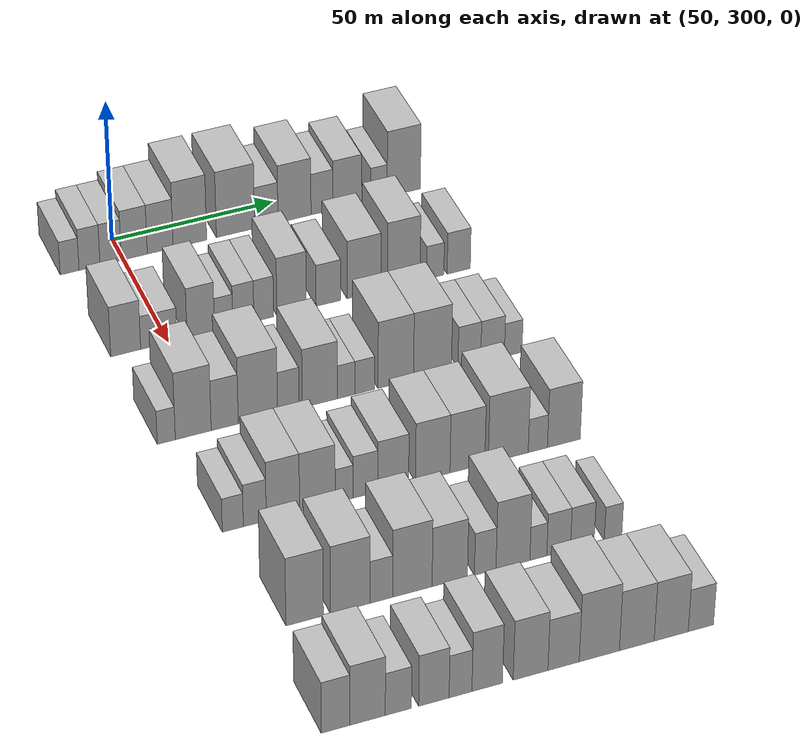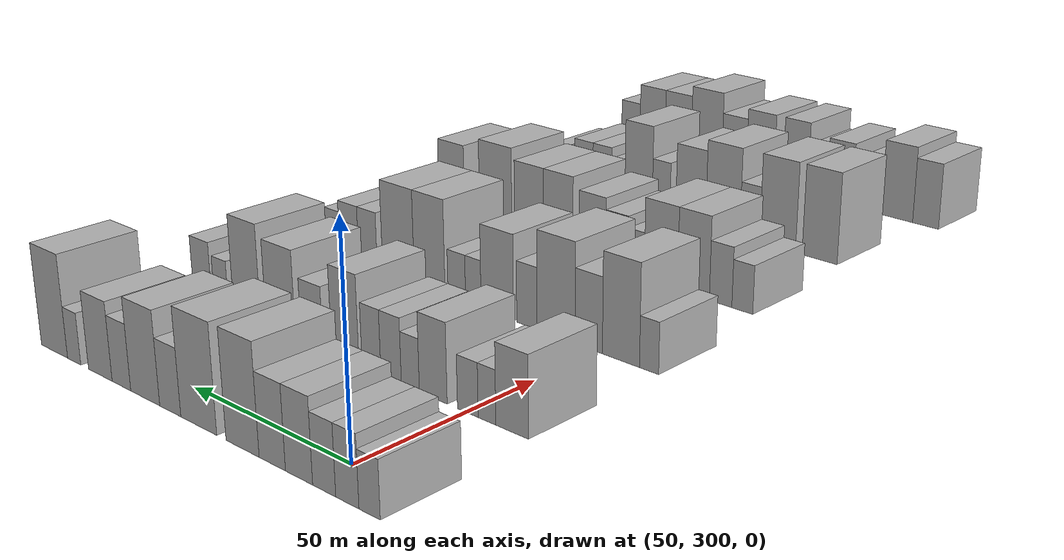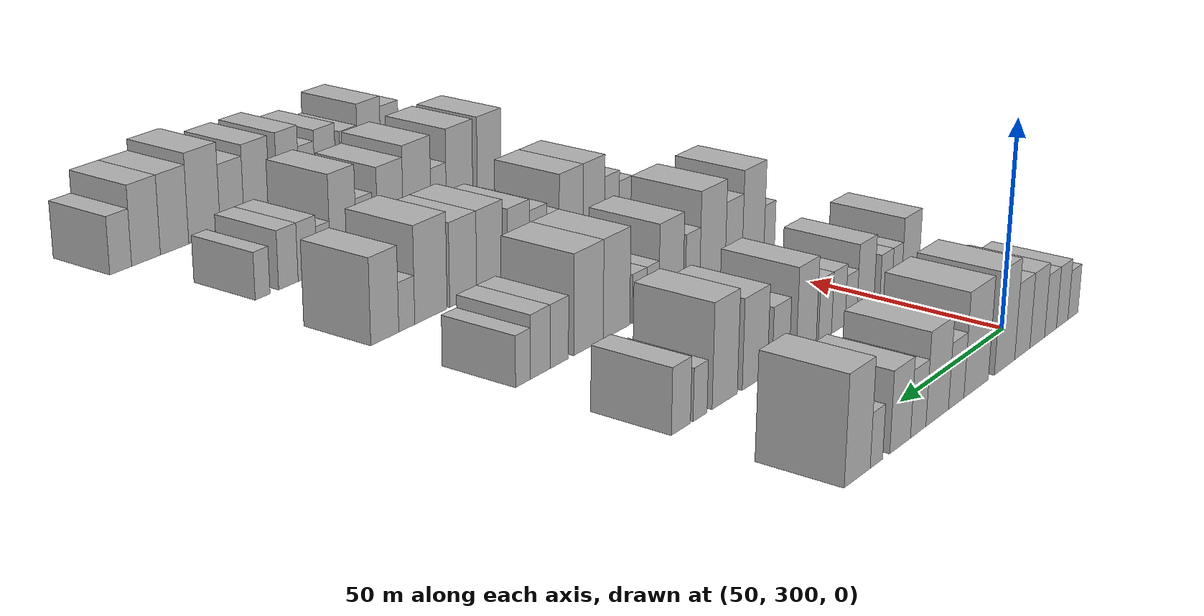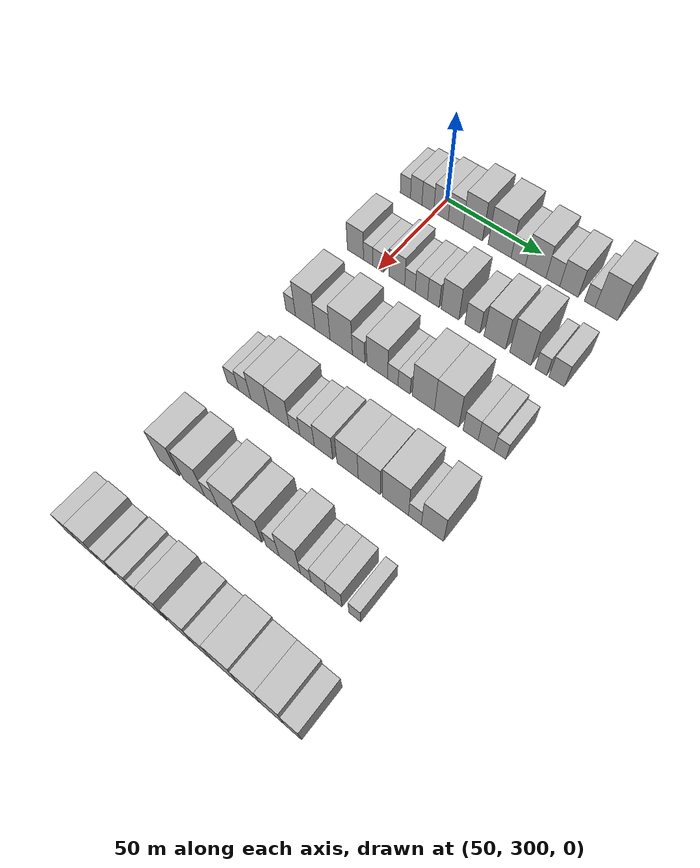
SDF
<sdf version="1.6">
 <world name="default">
  <model name="building_99">
   <static>1</static>
   <pose>50.0000 283.5942 0 0.000000 0.000000 0.000000</pose>
   <link name="link">
    <pose>0 0 6.00 0 0 0</pose>
    <collision name="collision"><geometry><box><size>20.0000 5.7207 12.0000</size></box></geometry></collision>
    <visual name="visual">
     <cast_shadows>0</cast_shadows>
     <geometry><box><size>20.0000 5.7207 12.0000</size></box></geometry>
     <material>
      <script>
       <uri>model://HANNAS_wall/materials/scripts</uri>
       <uri>model://HANNAS_wall/materials/textures</uri>
       <name>vrc/HANNAS_wall</name>
      </script>
     </material>
    </visual>
   </link>
  </model>
  <model name="building_100">
   <static>1</static>
   <pose>50.0000 289.6488 0 0.000000 0.000000 0.000000</pose>
   <link name="link">
    <pose>0 0 7.50 0 0 0</pose>
    <collision name="collision"><geometry><box><size>20.0000 6.3885 15.0000</size></box></geometry></collision>
    <visual name="visual">
     <cast_shadows>0</cast_shadows>
     <geometry><box><size>20.0000 6.3885 15.0000</size></box></geometry>
     <material>
      <script>
       <uri>model://HANNAS_wall/materials/scripts</uri>
       <uri>model://HANNAS_wall/materials/textures</uri>
       <name>vrc/HANNAS_wall</name>
      </script>
     </material>
    </visual>
   </link>
  </model>
  <model name="building_101">
   <static>1</static>
   <pose>50.0000 296.1106 0 0.000000 0.000000 0.000000</pose>
   <link name="link">
    <pose>0 0 7.50 0 0 0</pose>
    <collision name="collision"><geometry><box><size>20.0000 6.5351 15.0000</size></box></geometry></collision>
    <visual name="visual">
     <cast_shadows>0</cast_shadows>
     <geometry><box><size>20.0000 6.5351 15.0000</size></box></geometry>
     <material>
      <script>
       <uri>model://HANNAS_wall/materials/scripts</uri>
       <uri>model://HANNAS_wall/materials/textures</uri>
       <name>vrc/HANNAS_wall</name>
      </script>
     </material>
    </visual>
   </link>
  </model>
  <model name="building_102">
   <static>1</static>
   <pose>50.0000 303.3493 0 0.000000 0.000000 0.000000</pose>
   <link name="link">
    <pose>0 0 9.00 0 0 0</pose>
    <collision name="collision"><geometry><box><size>20.0000 7.9422 18.0000</size></box></geometry></collision>
    <visual name="visual">
     <cast_shadows>0</cast_shadows>
     <geometry><box><size>20.0000 7.9422 18.0000</size></box></geometry>
     <material>
      <script>
       <uri>model://HANNAS_wall/materials/scripts</uri>
       <uri>model://HANNAS_wall/materials/textures</uri>
       <name>vrc/HANNAS_wall</name>
      </script>
     </material>
    </visual>
   </link>
  </model>
  <model name="building_103">
   <static>1</static>
   <pose>50.0000 311.2941 0 0.000000 0.000000 0.000000</pose>
   <link name="link">
    <pose>0 0 9.00 0 0 0</pose>
    <collision name="collision"><geometry><box><size>20.0000 7.9475 18.0000</size></box></geometry></collision>
    <visual name="visual">
     <cast_shadows>0</cast_shadows>
     <geometry><box><size>20.0000 7.9475 18.0000</size></box></geometry>
     <material>
      <script>
       <uri>model://HANNAS_wall/materials/scripts</uri>
       <uri>model://HANNAS_wall/materials/textures</uri>
       <name>vrc/HANNAS_wall</name>
      </script>
     </material>
    </visual>
   </link>
  </model>
  <model name="building_104">
   <static>1</static>
   <pose>50.0000 320.4588 0 0.000000 0.000000 0.000000</pose>
   <link name="link">
    <pose>0 0 12.00 0 0 0</pose>
    <collision name="collision"><geometry><box><size>20.0000 10.3818 24.0000</size></box></geometry></collision>
    <visual name="visual">
     <cast_shadows>0</cast_shadows>
     <geometry><box><size>20.0000 10.3818 24.0000</size></box></geometry>
     <material>
      <script>
       <uri>model://HANNAS_wall/materials/scripts</uri>
       <uri>model://HANNAS_wall/materials/textures</uri>
       <name>vrc/HANNAS_wall</name>
      </script>
     </material>
    </visual>
   </link>
  </model>
  <model name="building_105">
   <static>1</static>
   <pose>50.0000 334.6109 0 0.000000 0.000000 0.000000</pose>
   <link name="link">
    <pose>0 0 12.00 0 0 0</pose>
    <collision name="collision"><geometry><box><size>20.0000 11.9225 24.0000</size></box></geometry></collision>
    <visual name="visual">
     <cast_shadows>0</cast_shadows>
     <geometry><box><size>20.0000 11.9225 24.0000</size></box></geometry>
     <material>
      <script>
       <uri>model://HANNAS_wall/materials/scripts</uri>
       <uri>model://HANNAS_wall/materials/textures</uri>
       <name>vrc/HANNAS_wall</name>
      </script>
     </material>
    </visual>
   </link>
  </model>
  <model name="building_106">
   <static>1</static>
   <pose>50.0000 344.2113 0 0.000000 0.000000 0.000000</pose>
   <link name="link">
    <pose>0 0 7.50 0 0 0</pose>
    <collision name="collision"><geometry><box><size>20.0000 7.2783 15.0000</size></box></geometry></collision>
    <visual name="visual">
     <cast_shadows>0</cast_shadows>
     <geometry><box><size>20.0000 7.2783 15.0000</size></box></geometry>
     <material>
      <script>
       <uri>model://HANNAS_wall/materials/scripts</uri>
       <uri>model://HANNAS_wall/materials/textures</uri>
       <name>vrc/HANNAS_wall</name>
      </script>
     </material>
    </visual>
   </link>
  </model>
  <model name="building_107">
   <static>1</static>
   <pose>50.0000 353.0232 0 0.000000 0.000000 0.000000</pose>
   <link name="link">
    <pose>0 0 10.50 0 0 0</pose>
    <collision name="collision"><geometry><box><size>20.0000 10.3456 21.0000</size></box></geometry></collision>
    <visual name="visual">
     <cast_shadows>0</cast_shadows>
     <geometry><box><size>20.0000 10.3456 21.0000</size></box></geometry>
     <material>
      <script>
       <uri>model://HANNAS_wall/materials/scripts</uri>
       <uri>model://HANNAS_wall/materials/textures</uri>
       <name>vrc/HANNAS_wall</name>
      </script>
     </material>
    </visual>
   </link>
  </model>
  <model name="building_108">
   <static>1</static>
   <pose>50.0000 361.6275 0 0.000000 0.000000 0.000000</pose>
   <link name="link">
    <pose>0 0 7.50 0 0 0</pose>
    <collision name="collision"><geometry><box><size>20.0000 6.8631 15.0000</size></box></geometry></collision>
    <visual name="visual">
     <cast_shadows>0</cast_shadows>
     <geometry><box><size>20.0000 6.8631 15.0000</size></box></geometry>
     <material>
      <script>
       <uri>model://HANNAS_wall/materials/scripts</uri>
       <uri>model://HANNAS_wall/materials/textures</uri>
       <name>vrc/HANNAS_wall</name>
      </script>
     </material>
    </visual>
   </link>
  </model>
  <model name="building_109">
   <static>1</static>
   <pose>50.0000 369.5474 0 0.000000 0.000000 0.000000</pose>
   <link name="link">
    <pose>0 0 9.00 0 0 0</pose>
    <collision name="collision"><geometry><box><size>20.0000 8.9766 18.0000</size></box></geometry></collision>
    <visual name="visual">
     <cast_shadows>0</cast_shadows>
     <geometry><box><size>20.0000 8.9766 18.0000</size></box></geometry>
     <material>
      <script>
       <uri>model://HANNAS_wall/materials/scripts</uri>
       <uri>model://HANNAS_wall/materials/textures</uri>
       <name>vrc/HANNAS_wall</name>
      </script>
     </material>
    </visual>
   </link>
  </model>
  <model name="building_110">
   <static>1</static>
   <pose>50.0000 379.6434 0 0.000000 0.000000 0.000000</pose>
   <link name="link">
    <pose>0 0 6.00 0 0 0</pose>
    <collision name="collision"><geometry><box><size>20.0000 5.2154 12.0000</size></box></geometry></collision>
    <visual name="visual">
     <cast_shadows>0</cast_shadows>
     <geometry><box><size>20.0000 5.2154 12.0000</size></box></geometry>
     <material>
      <script>
       <uri>model://HANNAS_wall/materials/scripts</uri>
       <uri>model://HANNAS_wall/materials/textures</uri>
       <name>vrc/HANNAS_wall</name>
      </script>
     </material>
    </visual>
   </link>
  </model>
  <model name="building_111">
   <static>1</static>
   <pose>50.0000 387.5300 0 0.000000 0.000000 0.000000</pose>
   <link name="link">
    <pose>0 0 12.00 0 0 0</pose>
    <collision name="collision"><geometry><box><size>20.0000 10.5576 24.0000</size></box></geometry></collision>
    <visual name="visual">
     <cast_shadows>0</cast_shadows>
     <geometry><box><size>20.0000 10.5576 24.0000</size></box></geometry>
     <material>
      <script>
       <uri>model://HANNAS_wall/materials/scripts</uri>
       <uri>model://HANNAS_wall/materials/textures</uri>
       <name>vrc/HANNAS_wall</name>
      </script>
     </material>
    </visual>
   </link>
  </model>
  <model name="building_235">
   <static>1</static>
   <pose>90.0000 287.1846 0 0.000000 0.000000 0.000000</pose>
   <link name="link">
    <pose>0 0 9.00 0 0 0</pose>
    <collision name="collision"><geometry><box><size>20.0000 8.9286 18.0000</size></box></geometry></collision>
    <visual name="visual">
     <cast_shadows>0</cast_shadows>
     <geometry><box><size>20.0000 8.9286 18.0000</size></box></geometry>
     <material>
      <script>
       <uri>model://HANNAS_wall/materials/scripts</uri>
       <uri>model://HANNAS_wall/materials/textures</uri>
       <name>vrc/HANNAS_wall</name>
      </script>
     </material>
    </visual>
   </link>
  </model>
  <model name="building_236">
   <static>1</static>
   <pose>90.0000 294.1206 0 0.000000 0.000000 0.000000</pose>
   <link name="link">
    <pose>0 0 6.00 0 0 0</pose>
    <collision name="collision"><geometry><box><size>20.0000 4.9433 12.0000</size></box></geometry></collision>
    <visual name="visual">
     <cast_shadows>0</cast_shadows>
     <geometry><box><size>20.0000 4.9433 12.0000</size></box></geometry>
     <material>
      <script>
       <uri>model://HANNAS_wall/materials/scripts</uri>
       <uri>model://HANNAS_wall/materials/textures</uri>
       <name>vrc/HANNAS_wall</name>
      </script>
     </material>
    </visual>
   </link>
  </model>
  <model name="building_237">
   <static>1</static>
   <pose>90.0000 299.5591 0 0.000000 0.000000 0.000000</pose>
   <link name="link">
    <pose>0 0 6.00 0 0 0</pose>
    <collision name="collision"><geometry><box><size>20.0000 5.9336 12.0000</size></box></geometry></collision>
    <visual name="visual">
     <cast_shadows>0</cast_shadows>
     <geometry><box><size>20.0000 5.9336 12.0000</size></box></geometry>
     <material>
      <script>
       <uri>model://HANNAS_wall/materials/scripts</uri>
       <uri>model://HANNAS_wall/materials/textures</uri>
       <name>vrc/HANNAS_wall</name>
      </script>
     </material>
    </visual>
   </link>
  </model>
  <model name="building_238">
   <static>1</static>
   <pose>90.0000 309.6698 0 0.000000 0.000000 0.000000</pose>
   <link name="link">
    <pose>0 0 9.00 0 0 0</pose>
    <collision name="collision"><geometry><box><size>20.0000 8.2877 18.0000</size></box></geometry></collision>
    <visual name="visual">
     <cast_shadows>0</cast_shadows>
     <geometry><box><size>20.0000 8.2877 18.0000</size></box></geometry>
     <material>
      <script>
       <uri>model://HANNAS_wall/materials/scripts</uri>
       <uri>model://HANNAS_wall/materials/textures</uri>
       <name>vrc/HANNAS_wall</name>
      </script>
     </material>
    </visual>
   </link>
  </model>
  <model name="building_239">
   <static>1</static>
   <pose>90.0000 316.5700 0 0.000000 0.000000 0.000000</pose>
   <link name="link">
    <pose>0 0 6.00 0 0 0</pose>
    <collision name="collision"><geometry><box><size>20.0000 5.5128 12.0000</size></box></geometry></collision>
    <visual name="visual">
     <cast_shadows>0</cast_shadows>
     <geometry><box><size>20.0000 5.5128 12.0000</size></box></geometry>
     <material>
      <script>
       <uri>model://HANNAS_wall/materials/scripts</uri>
       <uri>model://HANNAS_wall/materials/textures</uri>
       <name>vrc/HANNAS_wall</name>
      </script>
     </material>
    </visual>
   </link>
  </model>
  <model name="building_240">
   <static>1</static>
   <pose>90.0000 322.5215 0 0.000000 0.000000 0.000000</pose>
   <link name="link">
    <pose>0 0 7.50 0 0 0</pose>
    <collision name="collision"><geometry><box><size>20.0000 6.3901 15.0000</size></box></geometry></collision>
    <visual name="visual">
     <cast_shadows>0</cast_shadows>
     <geometry><box><size>20.0000 6.3901 15.0000</size></box></geometry>
     <material>
      <script>
       <uri>model://HANNAS_wall/materials/scripts</uri>
       <uri>model://HANNAS_wall/materials/textures</uri>
       <name>vrc/HANNAS_wall</name>
      </script>
     </material>
    </visual>
   </link>
  </model>
  <model name="building_241">
   <static>1</static>
   <pose>90.0000 328.7216 0 0.000000 0.000000 0.000000</pose>
   <link name="link">
    <pose>0 0 7.50 0 0 0</pose>
    <collision name="collision"><geometry><box><size>20.0000 6.0102 15.0000</size></box></geometry></collision>
    <visual name="visual">
     <cast_shadows>0</cast_shadows>
     <geometry><box><size>20.0000 6.0102 15.0000</size></box></geometry>
     <material>
      <script>
       <uri>model://HANNAS_wall/materials/scripts</uri>
       <uri>model://HANNAS_wall/materials/textures</uri>
       <name>vrc/HANNAS_wall</name>
      </script>
     </material>
    </visual>
   </link>
  </model>
  <model name="building_242">
   <static>1</static>
   <pose>90.0000 337.2076 0 0.000000 0.000000 0.000000</pose>
   <link name="link">
    <pose>0 0 10.50 0 0 0</pose>
    <collision name="collision"><geometry><box><size>20.0000 8.9616 21.0000</size></box></geometry></collision>
    <visual name="visual">
     <cast_shadows>0</cast_shadows>
     <geometry><box><size>20.0000 8.9616 21.0000</size></box></geometry>
     <material>
      <script>
       <uri>model://HANNAS_wall/materials/scripts</uri>
       <uri>model://HANNAS_wall/materials/textures</uri>
       <name>vrc/HANNAS_wall</name>
      </script>
     </material>
    </visual>
   </link>
  </model>
  <model name="building_243">
   <static>1</static>
   <pose>90.0000 348.4269 0 0.000000 0.000000 0.000000</pose>
   <link name="link">
    <pose>0 0 7.50 0 0 0</pose>
    <collision name="collision"><geometry><box><size>20.0000 7.4771 15.0000</size></box></geometry></collision>
    <visual name="visual">
     <cast_shadows>0</cast_shadows>
     <geometry><box><size>20.0000 7.4771 15.0000</size></box></geometry>
     <material>
      <script>
       <uri>model://HANNAS_wall/materials/scripts</uri>
       <uri>model://HANNAS_wall/materials/textures</uri>
       <name>vrc/HANNAS_wall</name>
      </script>
     </material>
    </visual>
   </link>
  </model>
  <model name="building_244">
   <static>1</static>
   <pose>90.0000 359.3916 0 0.000000 0.000000 0.000000</pose>
   <link name="link">
    <pose>0 0 10.50 0 0 0</pose>
    <collision name="collision"><geometry><box><size>20.0000 10.4521 21.0000</size></box></geometry></collision>
    <visual name="visual">
     <cast_shadows>0</cast_shadows>
     <geometry><box><size>20.0000 10.4521 21.0000</size></box></geometry>
     <material>
      <script>
       <uri>model://HANNAS_wall/materials/scripts</uri>
       <uri>model://HANNAS_wall/materials/textures</uri>
       <name>vrc/HANNAS_wall</name>
      </script>
     </material>
    </visual>
   </link>
  </model>
  <model name="building_245">
   <static>1</static>
   <pose>90.0000 371.6680 0 0.000000 0.000000 0.000000</pose>
   <link name="link">
    <pose>0 0 12.00 0 0 0</pose>
    <collision name="collision"><geometry><box><size>20.0000 10.1008 24.0000</size></box></geometry></collision>
    <visual name="visual">
     <cast_shadows>0</cast_shadows>
     <geometry><box><size>20.0000 10.1008 24.0000</size></box></geometry>
     <material>
      <script>
       <uri>model://HANNAS_wall/materials/scripts</uri>
       <uri>model://HANNAS_wall/materials/textures</uri>
       <name>vrc/HANNAS_wall</name>
      </script>
     </material>
    </visual>
   </link>
  </model>
  <model name="building_246">
   <static>1</static>
   <pose>90.0000 381.4319 0 0.000000 0.000000 0.000000</pose>
   <link name="link">
    <pose>0 0 6.00 0 0 0</pose>
    <collision name="collision"><geometry><box><size>20.0000 5.4271 12.0000</size></box></geometry></collision>
    <visual name="visual">
     <cast_shadows>0</cast_shadows>
     <geometry><box><size>20.0000 5.4271 12.0000</size></box></geometry>
     <material>
      <script>
       <uri>model://HANNAS_wall/materials/scripts</uri>
       <uri>model://HANNAS_wall/materials/textures</uri>
       <name>vrc/HANNAS_wall</name>
      </script>
     </material>
    </visual>
   </link>
  </model>
  <model name="building_247">
   <static>1</static>
   <pose>90.0000 388.7558 0 0.000000 0.000000 0.000000</pose>
   <link name="link">
    <pose>0 0 7.50 0 0 0</pose>
    <collision name="collision"><geometry><box><size>20.0000 7.2208 15.0000</size></box></geometry></collision>
    <visual name="visual">
     <cast_shadows>0</cast_shadows>
     <geometry><box><size>20.0000 7.2208 15.0000</size></box></geometry>
     <material>
      <script>
       <uri>model://HANNAS_wall/materials/scripts</uri>
       <uri>model://HANNAS_wall/materials/textures</uri>
       <name>vrc/HANNAS_wall</name>
      </script>
     </material>
    </visual>
   </link>
  </model>
  <model name="building_372">
   <static>1</static>
   <pose>130.0000 285.4534 0 0.000000 0.000000 0.000000</pose>
   <link name="link">
    <pose>0 0 6.00 0 0 0</pose>
    <collision name="collision"><geometry><box><size>20.0000 5.2612 12.0000</size></box></geometry></collision>
    <visual name="visual">
     <cast_shadows>0</cast_shadows>
     <geometry><box><size>20.0000 5.2612 12.0000</size></box></geometry>
     <material>
      <script>
       <uri>model://HANNAS_wall/materials/scripts</uri>
       <uri>model://HANNAS_wall/materials/textures</uri>
       <name>vrc/HANNAS_wall</name>
      </script>
     </material>
    </visual>
   </link>
  </model>
  <model name="building_373">
   <static>1</static>
   <pose>130.0000 293.3289 0 0.000000 0.000000 0.000000</pose>
   <link name="link">
    <pose>0 0 12.00 0 0 0</pose>
    <collision name="collision"><geometry><box><size>20.0000 10.4898 24.0000</size></box></geometry></collision>
    <visual name="visual">
     <cast_shadows>0</cast_shadows>
     <geometry><box><size>20.0000 10.4898 24.0000</size></box></geometry>
     <material>
      <script>
       <uri>model://HANNAS_wall/materials/scripts</uri>
       <uri>model://HANNAS_wall/materials/textures</uri>
       <name>vrc/HANNAS_wall</name>
      </script>
     </material>
    </visual>
   </link>
  </model>
  <model name="building_374">
   <static>1</static>
   <pose>130.0000 302.5518 0 0.000000 0.000000 0.000000</pose>
   <link name="link">
    <pose>0 0 9.00 0 0 0</pose>
    <collision name="collision"><geometry><box><size>20.0000 7.9560 18.0000</size></box></geometry></collision>
    <visual name="visual">
     <cast_shadows>0</cast_shadows>
     <geometry><box><size>20.0000 7.9560 18.0000</size></box></geometry>
     <material>
      <script>
       <uri>model://HANNAS_wall/materials/scripts</uri>
       <uri>model://HANNAS_wall/materials/textures</uri>
       <name>vrc/HANNAS_wall</name>
      </script>
     </material>
    </visual>
   </link>
  </model>
  <model name="building_375">
   <static>1</static>
   <pose>130.0000 312.3340 0 0.000000 0.000000 0.000000</pose>
   <link name="link">
    <pose>0 0 12.00 0 0 0</pose>
    <collision name="collision"><geometry><box><size>20.0000 11.6084 24.0000</size></box></geometry></collision>
    <visual name="visual">
     <cast_shadows>0</cast_shadows>
     <geometry><box><size>20.0000 11.6084 24.0000</size></box></geometry>
     <material>
      <script>
       <uri>model://HANNAS_wall/materials/scripts</uri>
       <uri>model://HANNAS_wall/materials/textures</uri>
       <name>vrc/HANNAS_wall</name>
      </script>
     </material>
    </visual>
   </link>
  </model>
  <model name="building_376">
   <static>1</static>
   <pose>130.0000 321.3046 0 0.000000 0.000000 0.000000</pose>
   <link name="link">
    <pose>0 0 7.50 0 0 0</pose>
    <collision name="collision"><geometry><box><size>20.0000 6.3328 15.0000</size></box></geometry></collision>
    <visual name="visual">
     <cast_shadows>0</cast_shadows>
     <geometry><box><size>20.0000 6.3328 15.0000</size></box></geometry>
     <material>
      <script>
       <uri>model://HANNAS_wall/materials/scripts</uri>
       <uri>model://HANNAS_wall/materials/textures</uri>
       <name>vrc/HANNAS_wall</name>
      </script>
     </material>
    </visual>
   </link>
  </model>
  <model name="building_377">
   <static>1</static>
   <pose>130.0000 330.7200 0 0.000000 0.000000 0.000000</pose>
   <link name="link">
    <pose>0 0 10.50 0 0 0</pose>
    <collision name="collision"><geometry><box><size>20.0000 10.4979 21.0000</size></box></geometry></collision>
    <visual name="visual">
     <cast_shadows>0</cast_shadows>
     <geometry><box><size>20.0000 10.4979 21.0000</size></box></geometry>
     <material>
      <script>
       <uri>model://HANNAS_wall/materials/scripts</uri>
       <uri>model://HANNAS_wall/materials/textures</uri>
       <name>vrc/HANNAS_wall</name>
      </script>
     </material>
    </visual>
   </link>
  </model>
  <model name="building_378">
   <static>1</static>
   <pose>130.0000 338.5406 0 0.000000 0.000000 0.000000</pose>
   <link name="link">
    <pose>0 0 6.00 0 0 0</pose>
    <collision name="collision"><geometry><box><size>20.0000 5.1434 12.0000</size></box></geometry></collision>
    <visual name="visual">
     <cast_shadows>0</cast_shadows>
     <geometry><box><size>20.0000 5.1434 12.0000</size></box></geometry>
     <material>
      <script>
       <uri>model://HANNAS_wall/materials/scripts</uri>
       <uri>model://HANNAS_wall/materials/textures</uri>
       <name>vrc/HANNAS_wall</name>
      </script>
     </material>
    </visual>
   </link>
  </model>
  <model name="building_379">
   <static>1</static>
   <pose>130.0000 344.0798 0 0.000000 0.000000 0.000000</pose>
   <link name="link">
    <pose>0 0 6.00 0 0 0</pose>
    <collision name="collision"><geometry><box><size>20.0000 5.9350 12.0000</size></box></geometry></collision>
    <visual name="visual">
     <cast_shadows>0</cast_shadows>
     <geometry><box><size>20.0000 5.9350 12.0000</size></box></geometry>
     <material>
      <script>
       <uri>model://HANNAS_wall/materials/scripts</uri>
       <uri>model://HANNAS_wall/materials/textures</uri>
       <name>vrc/HANNAS_wall</name>
      </script>
     </material>
    </visual>
   </link>
  </model>
  <model name="building_380">
   <static>1</static>
   <pose>130.0000 353.3999 0 0.000000 0.000000 0.000000</pose>
   <link name="link">
    <pose>0 0 12.00 0 0 0</pose>
    <collision name="collision"><geometry><box><size>20.0000 10.7052 24.0000</size></box></geometry></collision>
    <visual name="visual">
     <cast_shadows>0</cast_shadows>
     <geometry><box><size>20.0000 10.7052 24.0000</size></box></geometry>
     <material>
      <script>
       <uri>model://HANNAS_wall/materials/scripts</uri>
       <uri>model://HANNAS_wall/materials/textures</uri>
       <name>vrc/HANNAS_wall</name>
      </script>
     </material>
    </visual>
   </link>
  </model>
  <model name="building_381">
   <static>1</static>
   <pose>130.0000 364.4788 0 0.000000 0.000000 0.000000</pose>
   <link name="link">
    <pose>0 0 12.00 0 0 0</pose>
    <collision name="collision"><geometry><box><size>20.0000 11.4525 24.0000</size></box></geometry></collision>
    <visual name="visual">
     <cast_shadows>0</cast_shadows>
     <geometry><box><size>20.0000 11.4525 24.0000</size></box></geometry>
     <material>
      <script>
       <uri>model://HANNAS_wall/materials/scripts</uri>
       <uri>model://HANNAS_wall/materials/textures</uri>
       <name>vrc/HANNAS_wall</name>
      </script>
     </material>
    </visual>
   </link>
  </model>
  <model name="building_382">
   <static>1</static>
   <pose>130.0000 375.6638 0 0.000000 0.000000 0.000000</pose>
   <link name="link">
    <pose>0 0 7.50 0 0 0</pose>
    <collision name="collision"><geometry><box><size>20.0000 6.9174 15.0000</size></box></geometry></collision>
    <visual name="visual">
     <cast_shadows>0</cast_shadows>
     <geometry><box><size>20.0000 6.9174 15.0000</size></box></geometry>
     <material>
      <script>
       <uri>model://HANNAS_wall/materials/scripts</uri>
       <uri>model://HANNAS_wall/materials/textures</uri>
       <name>vrc/HANNAS_wall</name>
      </script>
     </material>
    </visual>
   </link>
  </model>
  <model name="building_383">
   <static>1</static>
   <pose>130.0000 382.7382 0 0.000000 0.000000 0.000000</pose>
   <link name="link">
    <pose>0 0 7.50 0 0 0</pose>
    <collision name="collision"><geometry><box><size>20.0000 7.2314 15.0000</size></box></geometry></collision>
    <visual name="visual">
     <cast_shadows>0</cast_shadows>
     <geometry><box><size>20.0000 7.2314 15.0000</size></box></geometry>
     <material>
      <script>
       <uri>model://HANNAS_wall/materials/scripts</uri>
       <uri>model://HANNAS_wall/materials/textures</uri>
       <name>vrc/HANNAS_wall</name>
      </script>
     </material>
    </visual>
   </link>
  </model>
  <model name="building_384">
   <static>1</static>
   <pose>130.0000 389.0397 0 0.000000 0.000000 0.000000</pose>
   <link name="link">
    <pose>0 0 6.00 0 0 0</pose>
    <collision name="collision"><geometry><box><size>20.0000 5.3716 12.0000</size></box></geometry></collision>
    <visual name="visual">
     <cast_shadows>0</cast_shadows>
     <geometry><box><size>20.0000 5.3716 12.0000</size></box></geometry>
     <material>
      <script>
       <uri>model://HANNAS_wall/materials/scripts</uri>
       <uri>model://HANNAS_wall/materials/textures</uri>
       <name>vrc/HANNAS_wall</name>
      </script>
     </material>
    </visual>
   </link>
  </model>
  <model name="building_504">
   <static>1</static>
   <pose>170.0000 290.5127 0 0.000000 0.000000 0.000000</pose>
   <link name="link">
    <pose>0 0 6.00 0 0 0</pose>
    <collision name="collision"><geometry><box><size>20.0000 5.9867 12.0000</size></box></geometry></collision>
    <visual name="visual">
     <cast_shadows>0</cast_shadows>
     <geometry><box><size>20.0000 5.9867 12.0000</size></box></geometry>
     <material>
      <script>
       <uri>model://HANNAS_wall/materials/scripts</uri>
       <uri>model://HANNAS_wall/materials/textures</uri>
       <name>vrc/HANNAS_wall</name>
      </script>
     </material>
    </visual>
   </link>
  </model>
  <model name="building_505">
   <static>1</static>
   <pose>170.0000 296.7995 0 0.000000 0.000000 0.000000</pose>
   <link name="link">
    <pose>0 0 7.50 0 0 0</pose>
    <collision name="collision"><geometry><box><size>20.0000 6.5869 15.0000</size></box></geometry></collision>
    <visual name="visual">
     <cast_shadows>0</cast_shadows>
     <geometry><box><size>20.0000 6.5869 15.0000</size></box></geometry>
     <material>
      <script>
       <uri>model://HANNAS_wall/materials/scripts</uri>
       <uri>model://HANNAS_wall/materials/textures</uri>
       <name>vrc/HANNAS_wall</name>
      </script>
     </material>
    </visual>
   </link>
  </model>
  <model name="building_506">
   <static>1</static>
   <pose>170.0000 304.8818 0 0.000000 0.000000 0.000000</pose>
   <link name="link">
    <pose>0 0 10.50 0 0 0</pose>
    <collision name="collision"><geometry><box><size>20.0000 9.5776 21.0000</size></box></geometry></collision>
    <visual name="visual">
     <cast_shadows>0</cast_shadows>
     <geometry><box><size>20.0000 9.5776 21.0000</size></box></geometry>
     <material>
      <script>
       <uri>model://HANNAS_wall/materials/scripts</uri>
       <uri>model://HANNAS_wall/materials/textures</uri>
       <name>vrc/HANNAS_wall</name>
      </script>
     </material>
    </visual>
   </link>
  </model>
  <model name="building_507">
   <static>1</static>
   <pose>170.0000 314.8229 0 0.000000 0.000000 0.000000</pose>
   <link name="link">
    <pose>0 0 10.50 0 0 0</pose>
    <collision name="collision"><geometry><box><size>20.0000 10.3046 21.0000</size></box></geometry></collision>
    <visual name="visual">
     <cast_shadows>0</cast_shadows>
     <geometry><box><size>20.0000 10.3046 21.0000</size></box></geometry>
     <material>
      <script>
       <uri>model://HANNAS_wall/materials/scripts</uri>
       <uri>model://HANNAS_wall/materials/textures</uri>
       <name>vrc/HANNAS_wall</name>
      </script>
     </material>
    </visual>
   </link>
  </model>
  <model name="building_508">
   <static>1</static>
   <pose>170.0000 322.5595 0 0.000000 0.000000 0.000000</pose>
   <link name="link">
    <pose>0 0 6.00 0 0 0</pose>
    <collision name="collision"><geometry><box><size>20.0000 5.1686 12.0000</size></box></geometry></collision>
    <visual name="visual">
     <cast_shadows>0</cast_shadows>
     <geometry><box><size>20.0000 5.1686 12.0000</size></box></geometry>
     <material>
      <script>
       <uri>model://HANNAS_wall/materials/scripts</uri>
       <uri>model://HANNAS_wall/materials/textures</uri>
       <name>vrc/HANNAS_wall</name>
      </script>
     </material>
    </visual>
   </link>
  </model>
  <model name="building_509">
   <static>1</static>
   <pose>170.0000 328.7460 0 0.000000 0.000000 0.000000</pose>
   <link name="link">
    <pose>0 0 7.50 0 0 0</pose>
    <collision name="collision"><geometry><box><size>20.0000 7.2044 15.0000</size></box></geometry></collision>
    <visual name="visual">
     <cast_shadows>0</cast_shadows>
     <geometry><box><size>20.0000 7.2044 15.0000</size></box></geometry>
     <material>
      <script>
       <uri>model://HANNAS_wall/materials/scripts</uri>
       <uri>model://HANNAS_wall/materials/textures</uri>
       <name>vrc/HANNAS_wall</name>
      </script>
     </material>
    </visual>
   </link>
  </model>
  <model name="building_510">
   <static>1</static>
   <pose>170.0000 336.8479 0 0.000000 0.000000 0.000000</pose>
   <link name="link">
    <pose>0 0 9.00 0 0 0</pose>
    <collision name="collision"><geometry><box><size>20.0000 8.9992 18.0000</size></box></geometry></collision>
    <visual name="visual">
     <cast_shadows>0</cast_shadows>
     <geometry><box><size>20.0000 8.9992 18.0000</size></box></geometry>
     <material>
      <script>
       <uri>model://HANNAS_wall/materials/scripts</uri>
       <uri>model://HANNAS_wall/materials/textures</uri>
       <name>vrc/HANNAS_wall</name>
      </script>
     </material>
    </visual>
   </link>
  </model>
  <model name="building_511">
   <static>1</static>
   <pose>170.0000 348.4188 0 0.000000 0.000000 0.000000</pose>
   <link name="link">
    <pose>0 0 10.50 0 0 0</pose>
    <collision name="collision"><geometry><box><size>20.0000 10.1428 21.0000</size></box></geometry></collision>
    <visual name="visual">
     <cast_shadows>0</cast_shadows>
     <geometry><box><size>20.0000 10.1428 21.0000</size></box></geometry>
     <material>
      <script>
       <uri>model://HANNAS_wall/materials/scripts</uri>
       <uri>model://HANNAS_wall/materials/textures</uri>
       <name>vrc/HANNAS_wall</name>
      </script>
     </material>
    </visual>
   </link>
  </model>
  <model name="building_512">
   <static>1</static>
   <pose>170.0000 358.6337 0 0.000000 0.000000 0.000000</pose>
   <link name="link">
    <pose>0 0 10.50 0 0 0</pose>
    <collision name="collision"><geometry><box><size>20.0000 10.2869 21.0000</size></box></geometry></collision>
    <visual name="visual">
     <cast_shadows>0</cast_shadows>
     <geometry><box><size>20.0000 10.2869 21.0000</size></box></geometry>
     <material>
      <script>
       <uri>model://HANNAS_wall/materials/scripts</uri>
       <uri>model://HANNAS_wall/materials/textures</uri>
       <name>vrc/HANNAS_wall</name>
      </script>
     </material>
    </visual>
   </link>
  </model>
  <model name="building_513">
   <static>1</static>
   <pose>170.0000 370.7271 0 0.000000 0.000000 0.000000</pose>
   <link name="link">
    <pose>0 0 12.00 0 0 0</pose>
    <collision name="collision"><geometry><box><size>20.0000 11.9001 24.0000</size></box></geometry></collision>
    <visual name="visual">
     <cast_shadows>0</cast_shadows>
     <geometry><box><size>20.0000 11.9001 24.0000</size></box></geometry>
     <material>
      <script>
       <uri>model://HANNAS_wall/materials/scripts</uri>
       <uri>model://HANNAS_wall/materials/textures</uri>
       <name>vrc/HANNAS_wall</name>
      </script>
     </material>
    </visual>
   </link>
  </model>
  <model name="building_514">
   <static>1</static>
   <pose>170.0000 379.5429 0 0.000000 0.000000 0.000000</pose>
   <link name="link">
    <pose>0 0 6.00 0 0 0</pose>
    <collision name="collision"><geometry><box><size>20.0000 5.7314 12.0000</size></box></geometry></collision>
    <visual name="visual">
     <cast_shadows>0</cast_shadows>
     <geometry><box><size>20.0000 5.7314 12.0000</size></box></geometry>
     <material>
      <script>
       <uri>model://HANNAS_wall/materials/scripts</uri>
       <uri>model://HANNAS_wall/materials/textures</uri>
       <name>vrc/HANNAS_wall</name>
      </script>
     </material>
    </visual>
   </link>
  </model>
  <model name="building_515">
   <static>1</static>
   <pose>170.0000 387.3143 0 0.000000 0.000000 0.000000</pose>
   <link name="link">
    <pose>0 0 10.50 0 0 0</pose>
    <collision name="collision"><geometry><box><size>20.0000 9.8114 21.0000</size></box></geometry></collision>
    <visual name="visual">
     <cast_shadows>0</cast_shadows>
     <geometry><box><size>20.0000 9.8114 21.0000</size></box></geometry>
     <material>
      <script>
       <uri>model://HANNAS_wall/materials/scripts</uri>
       <uri>model://HANNAS_wall/materials/textures</uri>
       <name>vrc/HANNAS_wall</name>
      </script>
     </material>
    </visual>
   </link>
  </model>
  <model name="building_649">
   <static>1</static>
   <pose>210.0000 296.1184 0 0.000000 0.000000 0.000000</pose>
   <link name="link">
    <pose>0 0 12.00 0 0 0</pose>
    <collision name="collision"><geometry><box><size>20.0000 10.4830 24.0000</size></box></geometry></collision>
    <visual name="visual">
     <cast_shadows>0</cast_shadows>
     <geometry><box><size>20.0000 10.4830 24.0000</size></box></geometry>
     <material>
      <script>
       <uri>model://HANNAS_wall/materials/scripts</uri>
       <uri>model://HANNAS_wall/materials/textures</uri>
       <name>vrc/HANNAS_wall</name>
      </script>
     </material>
    </visual>
   </link>
  </model>
  <model name="building_650">
   <static>1</static>
   <pose>210.0000 308.9493 0 0.000000 0.000000 0.000000</pose>
   <link name="link">
    <pose>0 0 12.00 0 0 0</pose>
    <collision name="collision"><geometry><box><size>20.0000 11.1790 24.0000</size></box></geometry></collision>
    <visual name="visual">
     <cast_shadows>0</cast_shadows>
     <geometry><box><size>20.0000 11.1790 24.0000</size></box></geometry>
     <material>
      <script>
       <uri>model://HANNAS_wall/materials/scripts</uri>
       <uri>model://HANNAS_wall/materials/textures</uri>
       <name>vrc/HANNAS_wall</name>
      </script>
     </material>
    </visual>
   </link>
  </model>
  <model name="building_651">
   <static>1</static>
   <pose>210.0000 317.7119 0 0.000000 0.000000 0.000000</pose>
   <link name="link">
    <pose>0 0 7.50 0 0 0</pose>
    <collision name="collision"><geometry><box><size>20.0000 6.3460 15.0000</size></box></geometry></collision>
    <visual name="visual">
     <cast_shadows>0</cast_shadows>
     <geometry><box><size>20.0000 6.3460 15.0000</size></box></geometry>
     <material>
      <script>
       <uri>model://HANNAS_wall/materials/scripts</uri>
       <uri>model://HANNAS_wall/materials/textures</uri>
       <name>vrc/HANNAS_wall</name>
      </script>
     </material>
    </visual>
   </link>
  </model>
  <model name="building_652">
   <static>1</static>
   <pose>210.0000 326.4947 0 0.000000 0.000000 0.000000</pose>
   <link name="link">
    <pose>0 0 12.00 0 0 0</pose>
    <collision name="collision"><geometry><box><size>20.0000 11.2197 24.0000</size></box></geometry></collision>
    <visual name="visual">
     <cast_shadows>0</cast_shadows>
     <geometry><box><size>20.0000 11.2197 24.0000</size></box></geometry>
     <material>
      <script>
       <uri>model://HANNAS_wall/materials/scripts</uri>
       <uri>model://HANNAS_wall/materials/textures</uri>
       <name>vrc/HANNAS_wall</name>
      </script>
     </material>
    </visual>
   </link>
  </model>
  <model name="building_653">
   <static>1</static>
   <pose>210.0000 337.1599 0 0.000000 0.000000 0.000000</pose>
   <link name="link">
    <pose>0 0 10.50 0 0 0</pose>
    <collision name="collision"><geometry><box><size>20.0000 10.1107 21.0000</size></box></geometry></collision>
    <visual name="visual">
     <cast_shadows>0</cast_shadows>
     <geometry><box><size>20.0000 10.1107 21.0000</size></box></geometry>
     <material>
      <script>
       <uri>model://HANNAS_wall/materials/scripts</uri>
       <uri>model://HANNAS_wall/materials/textures</uri>
       <name>vrc/HANNAS_wall</name>
      </script>
     </material>
    </visual>
   </link>
  </model>
  <model name="building_654">
   <static>1</static>
   <pose>210.0000 347.3077 0 0.000000 0.000000 0.000000</pose>
   <link name="link">
    <pose>0 0 7.50 0 0 0</pose>
    <collision name="collision"><geometry><box><size>20.0000 6.1849 15.0000</size></box></geometry></collision>
    <visual name="visual">
     <cast_shadows>0</cast_shadows>
     <geometry><box><size>20.0000 6.1849 15.0000</size></box></geometry>
     <material>
      <script>
       <uri>model://HANNAS_wall/materials/scripts</uri>
       <uri>model://HANNAS_wall/materials/textures</uri>
       <name>vrc/HANNAS_wall</name>
      </script>
     </material>
    </visual>
   </link>
  </model>
  <model name="building_655">
   <static>1</static>
   <pose>210.0000 355.2941 0 0.000000 0.000000 0.000000</pose>
   <link name="link">
    <pose>0 0 12.00 0 0 0</pose>
    <collision name="collision"><geometry><box><size>20.0000 9.7879 24.0000</size></box></geometry></collision>
    <visual name="visual">
     <cast_shadows>0</cast_shadows>
     <geometry><box><size>20.0000 9.7879 24.0000</size></box></geometry>
     <material>
      <script>
       <uri>model://HANNAS_wall/materials/scripts</uri>
       <uri>model://HANNAS_wall/materials/textures</uri>
       <name>vrc/HANNAS_wall</name>
      </script>
     </material>
    </visual>
   </link>
  </model>
  <model name="building_656">
   <static>1</static>
   <pose>210.0000 362.6398 0 0.000000 0.000000 0.000000</pose>
   <link name="link">
    <pose>0 0 6.00 0 0 0</pose>
    <collision name="collision"><geometry><box><size>20.0000 4.9035 12.0000</size></box></geometry></collision>
    <visual name="visual">
     <cast_shadows>0</cast_shadows>
     <geometry><box><size>20.0000 4.9035 12.0000</size></box></geometry>
     <material>
      <script>
       <uri>model://HANNAS_wall/materials/scripts</uri>
       <uri>model://HANNAS_wall/materials/textures</uri>
       <name>vrc/HANNAS_wall</name>
      </script>
     </material>
    </visual>
   </link>
  </model>
  <model name="building_657">
   <static>1</static>
   <pose>210.0000 368.5281 0 0.000000 0.000000 0.000000</pose>
   <link name="link">
    <pose>0 0 7.50 0 0 0</pose>
    <collision name="collision"><geometry><box><size>20.0000 6.8730 15.0000</size></box></geometry></collision>
    <visual name="visual">
     <cast_shadows>0</cast_shadows>
     <geometry><box><size>20.0000 6.8730 15.0000</size></box></geometry>
     <material>
      <script>
       <uri>model://HANNAS_wall/materials/scripts</uri>
       <uri>model://HANNAS_wall/materials/textures</uri>
       <name>vrc/HANNAS_wall</name>
      </script>
     </material>
    </visual>
   </link>
  </model>
  <model name="building_658">
   <static>1</static>
   <pose>210.0000 375.4104 0 0.000000 0.000000 0.000000</pose>
   <link name="link">
    <pose>0 0 7.50 0 0 0</pose>
    <collision name="collision"><geometry><box><size>20.0000 6.8917 15.0000</size></box></geometry></collision>
    <visual name="visual">
     <cast_shadows>0</cast_shadows>
     <geometry><box><size>20.0000 6.8917 15.0000</size></box></geometry>
     <material>
      <script>
       <uri>model://HANNAS_wall/materials/scripts</uri>
       <uri>model://HANNAS_wall/materials/textures</uri>
       <name>vrc/HANNAS_wall</name>
      </script>
     </material>
    </visual>
   </link>
  </model>
  <model name="building_659">
   <static>1</static>
   <pose>210.0000 384.4162 0 0.000000 0.000000 0.000000</pose>
   <link name="link">
    <pose>0 0 6.00 0 0 0</pose>
    <collision name="collision"><geometry><box><size>20.0000 5.1199 12.0000</size></box></geometry></collision>
    <visual name="visual">
     <cast_shadows>0</cast_shadows>
     <geometry><box><size>20.0000 5.1199 12.0000</size></box></geometry>
     <material>
      <script>
       <uri>model://HANNAS_wall/materials/scripts</uri>
       <uri>model://HANNAS_wall/materials/textures</uri>
       <name>vrc/HANNAS_wall</name>
      </script>
     </material>
    </visual>
   </link>
  </model>
  <model name="building_784">
   <static>1</static>
   <pose>250.0000 289.4703 0 0.000000 0.000000 0.000000</pose>
   <link name="link">
    <pose>0 0 9.00 0 0 0</pose>
    <collision name="collision"><geometry><box><size>20.0000 7.8007 18.0000</size></box></geometry></collision>
    <visual name="visual">
     <cast_shadows>0</cast_shadows>
     <geometry><box><size>20.0000 7.8007 18.0000</size></box></geometry>
     <material>
      <script>
       <uri>model://HANNAS_wall/materials/scripts</uri>
       <uri>model://HANNAS_wall/materials/textures</uri>
       <name>vrc/HANNAS_wall</name>
      </script>
     </material>
    </visual>
   </link>
  </model>
  <model name="building_785">
   <static>1</static>
   <pose>250.0000 298.2334 0 0.000000 0.000000 0.000000</pose>
   <link name="link">
    <pose>0 0 10.50 0 0 0</pose>
    <collision name="collision"><geometry><box><size>20.0000 9.7255 21.0000</size></box></geometry></collision>
    <visual name="visual">
     <cast_shadows>0</cast_shadows>
     <geometry><box><size>20.0000 9.7255 21.0000</size></box></geometry>
     <material>
      <script>
       <uri>model://HANNAS_wall/materials/scripts</uri>
       <uri>model://HANNAS_wall/materials/textures</uri>
       <name>vrc/HANNAS_wall</name>
      </script>
     </material>
    </visual>
   </link>
  </model>
  <model name="building_786">
   <static>1</static>
   <pose>250.0000 306.6945 0 0.000000 0.000000 0.000000</pose>
   <link name="link">
    <pose>0 0 7.50 0 0 0</pose>
    <collision name="collision"><geometry><box><size>20.0000 7.1967 15.0000</size></box></geometry></collision>
    <visual name="visual">
     <cast_shadows>0</cast_shadows>
     <geometry><box><size>20.0000 7.1967 15.0000</size></box></geometry>
     <material>
      <script>
       <uri>model://HANNAS_wall/materials/scripts</uri>
       <uri>model://HANNAS_wall/materials/textures</uri>
       <name>vrc/HANNAS_wall</name>
      </script>
     </material>
    </visual>
   </link>
  </model>
  <model name="building_787">
   <static>1</static>
   <pose>250.0000 316.5020 0 0.000000 0.000000 0.000000</pose>
   <link name="link">
    <pose>0 0 9.00 0 0 0</pose>
    <collision name="collision"><geometry><box><size>20.0000 8.4183 18.0000</size></box></geometry></collision>
    <visual name="visual">
     <cast_shadows>0</cast_shadows>
     <geometry><box><size>20.0000 8.4183 18.0000</size></box></geometry>
     <material>
      <script>
       <uri>model://HANNAS_wall/materials/scripts</uri>
       <uri>model://HANNAS_wall/materials/textures</uri>
       <name>vrc/HANNAS_wall</name>
      </script>
     </material>
    </visual>
   </link>
  </model>
  <model name="building_788">
   <static>1</static>
   <pose>250.0000 323.8781 0 0.000000 0.000000 0.000000</pose>
   <link name="link">
    <pose>0 0 7.50 0 0 0</pose>
    <collision name="collision"><geometry><box><size>20.0000 6.3341 15.0000</size></box></geometry></collision>
    <visual name="visual">
     <cast_shadows>0</cast_shadows>
     <geometry><box><size>20.0000 6.3341 15.0000</size></box></geometry>
     <material>
      <script>
       <uri>model://HANNAS_wall/materials/scripts</uri>
       <uri>model://HANNAS_wall/materials/textures</uri>
       <name>vrc/HANNAS_wall</name>
      </script>
     </material>
    </visual>
   </link>
  </model>
  <model name="building_789">
   <static>1</static>
   <pose>250.0000 331.3013 0 0.000000 0.000000 0.000000</pose>
   <link name="link">
    <pose>0 0 10.50 0 0 0</pose>
    <collision name="collision"><geometry><box><size>20.0000 8.5123 21.0000</size></box></geometry></collision>
    <visual name="visual">
     <cast_shadows>0</cast_shadows>
     <geometry><box><size>20.0000 8.5123 21.0000</size></box></geometry>
     <material>
      <script>
       <uri>model://HANNAS_wall/materials/scripts</uri>
       <uri>model://HANNAS_wall/materials/textures</uri>
       <name>vrc/HANNAS_wall</name>
      </script>
     </material>
    </visual>
   </link>
  </model>
  <model name="building_790">
   <static>1</static>
   <pose>250.0000 343.4313 0 0.000000 0.000000 0.000000</pose>
   <link name="link">
    <pose>0 0 10.50 0 0 0</pose>
    <collision name="collision"><geometry><box><size>20.0000 9.7476 21.0000</size></box></geometry></collision>
    <visual name="visual">
     <cast_shadows>0</cast_shadows>
     <geometry><box><size>20.0000 9.7476 21.0000</size></box></geometry>
     <material>
      <script>
       <uri>model://HANNAS_wall/materials/scripts</uri>
       <uri>model://HANNAS_wall/materials/textures</uri>
       <name>vrc/HANNAS_wall</name>
      </script>
     </material>
    </visual>
   </link>
  </model>
  <model name="building_791">
   <static>1</static>
   <pose>250.0000 352.7142 0 0.000000 0.000000 0.000000</pose>
   <link name="link">
    <pose>0 0 9.00 0 0 0</pose>
    <collision name="collision"><geometry><box><size>20.0000 8.8182 18.0000</size></box></geometry></collision>
    <visual name="visual">
     <cast_shadows>0</cast_shadows>
     <geometry><box><size>20.0000 8.8182 18.0000</size></box></geometry>
     <material>
      <script>
       <uri>model://HANNAS_wall/materials/scripts</uri>
       <uri>model://HANNAS_wall/materials/textures</uri>
       <name>vrc/HANNAS_wall</name>
      </script>
     </material>
    </visual>
   </link>
  </model>
  <model name="building_792">
   <static>1</static>
   <pose>250.0000 362.8043 0 0.000000 0.000000 0.000000</pose>
   <link name="link">
    <pose>0 0 12.00 0 0 0</pose>
    <collision name="collision"><geometry><box><size>20.0000 11.3621 24.0000</size></box></geometry></collision>
    <visual name="visual">
     <cast_shadows>0</cast_shadows>
     <geometry><box><size>20.0000 11.3621 24.0000</size></box></geometry>
     <material>
      <script>
       <uri>model://HANNAS_wall/materials/scripts</uri>
       <uri>model://HANNAS_wall/materials/textures</uri>
       <name>vrc/HANNAS_wall</name>
      </script>
     </material>
    </visual>
   </link>
  </model>
  <model name="building_793">
   <static>1</static>
   <pose>250.0000 373.4484 0 0.000000 0.000000 0.000000</pose>
   <link name="link">
    <pose>0 0 10.50 0 0 0</pose>
    <collision name="collision"><geometry><box><size>20.0000 9.9261 21.0000</size></box></geometry></collision>
    <visual name="visual">
     <cast_shadows>0</cast_shadows>
     <geometry><box><size>20.0000 9.9261 21.0000</size></box></geometry>
     <material>
      <script>
       <uri>model://HANNAS_wall/materials/scripts</uri>
       <uri>model://HANNAS_wall/materials/textures</uri>
       <name>vrc/HANNAS_wall</name>
      </script>
     </material>
    </visual>
   </link>
  </model>
  <model name="building_794">
   <static>1</static>
   <pose>250.0000 383.2933 0 0.000000 0.000000 0.000000</pose>
   <link name="link">
    <pose>0 0 10.50 0 0 0</pose>
    <collision name="collision"><geometry><box><size>20.0000 9.7636 21.0000</size></box></geometry></collision>
    <visual name="visual">
     <cast_shadows>0</cast_shadows>
     <geometry><box><size>20.0000 9.7636 21.0000</size></box></geometry>
     <material>
      <script>
       <uri>model://HANNAS_wall/materials/scripts</uri>
       <uri>model://HANNAS_wall/materials/textures</uri>
       <name>vrc/HANNAS_wall</name>
      </script>
     </material>
    </visual>
   </link>
  </model>
  <model name="building_795">
   <static>1</static>
   <pose>250.0000 391.8070 0 0.000000 0.000000 0.000000</pose>
   <link name="link">
    <pose>0 0 7.50 0 0 0</pose>
    <collision name="collision"><geometry><box><size>20.0000 7.2639 15.0000</size></box></geometry></collision>
    <visual name="visual">
     <cast_shadows>0</cast_shadows>
     <geometry><box><size>20.0000 7.2639 15.0000</size></box></geometry>
     <material>
      <script>
       <uri>model://HANNAS_wall/materials/scripts</uri>
       <uri>model://HANNAS_wall/materials/textures</uri>
       <name>vrc/HANNAS_wall</name>
      </script>
     </material>
    </visual>
   </link>
  </model>
 </world>
</sdf>
